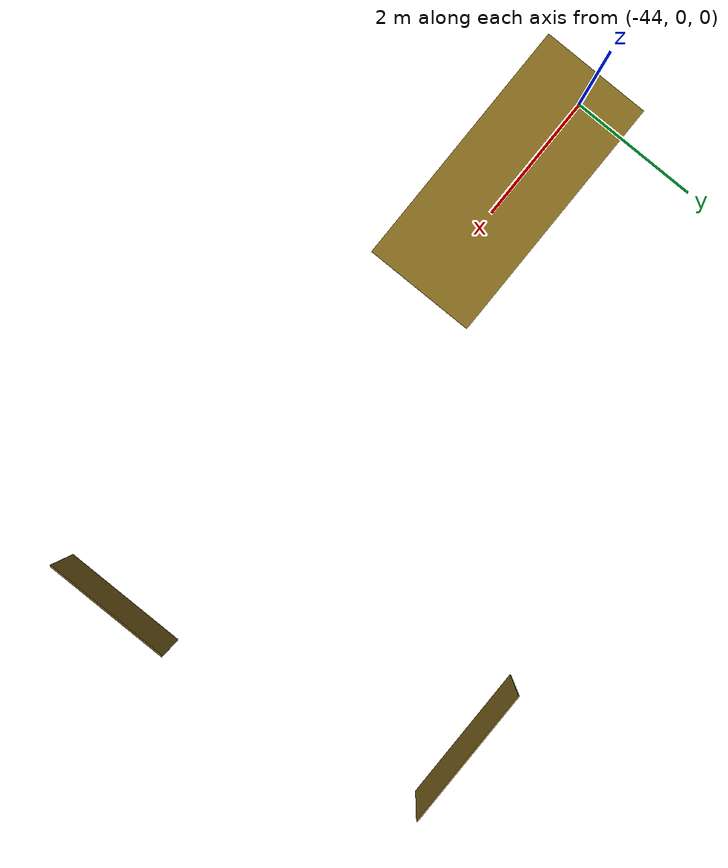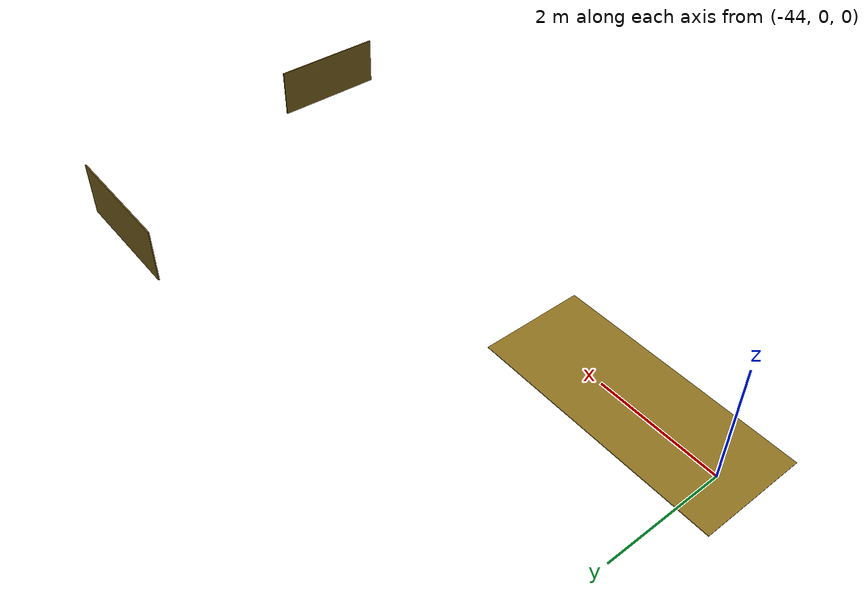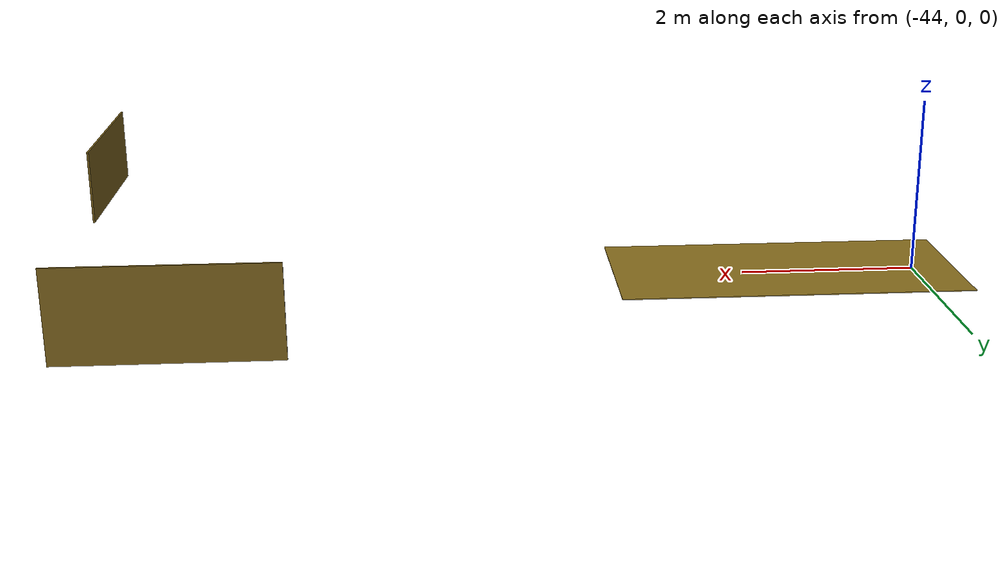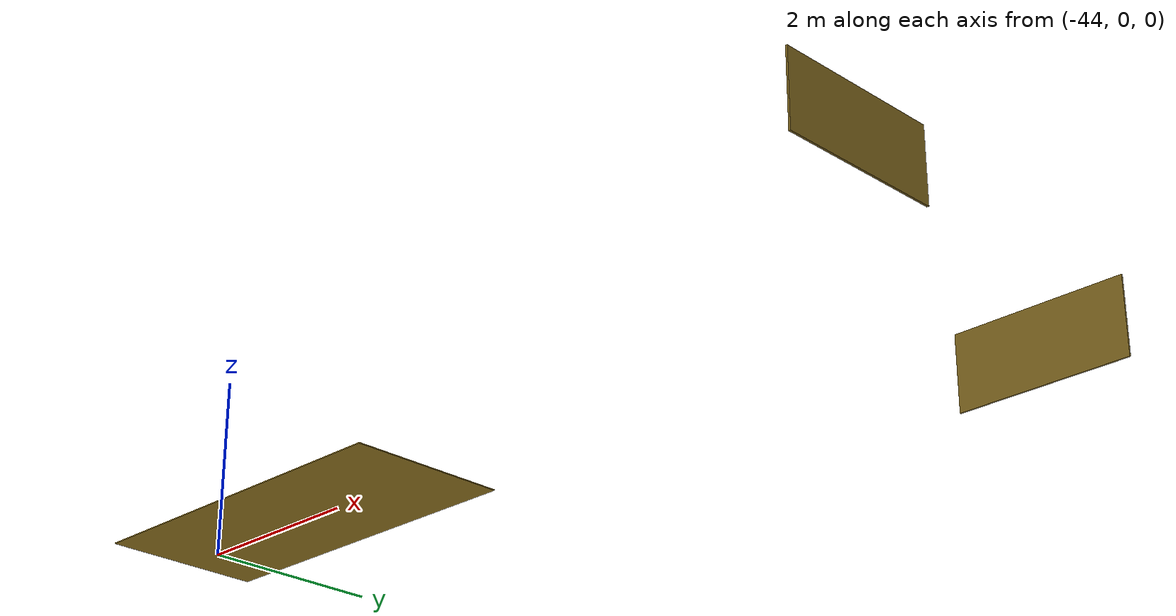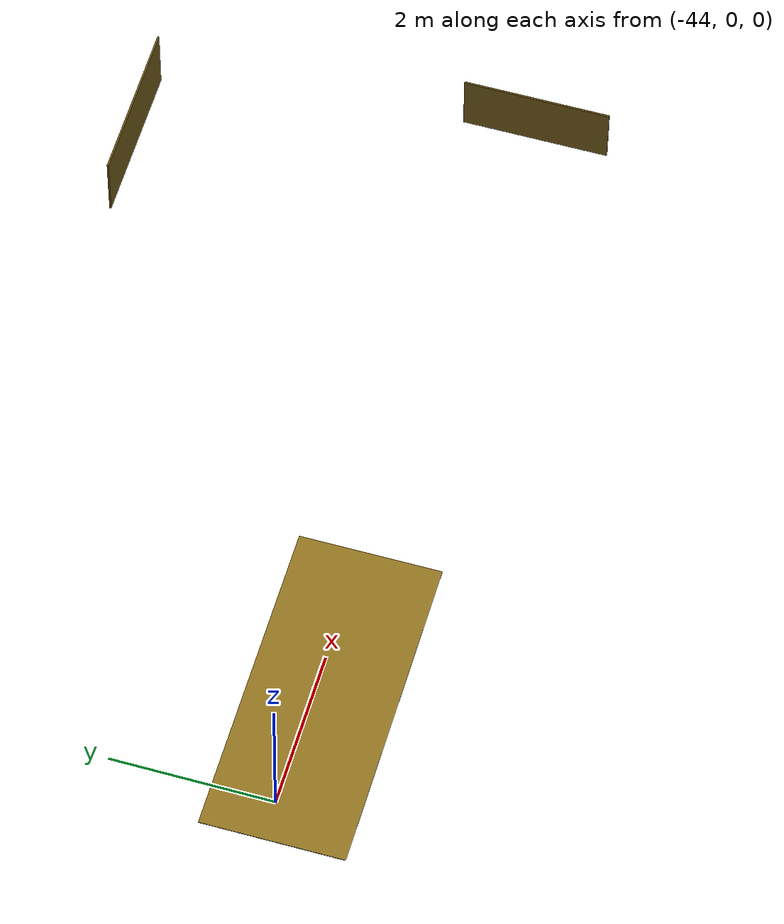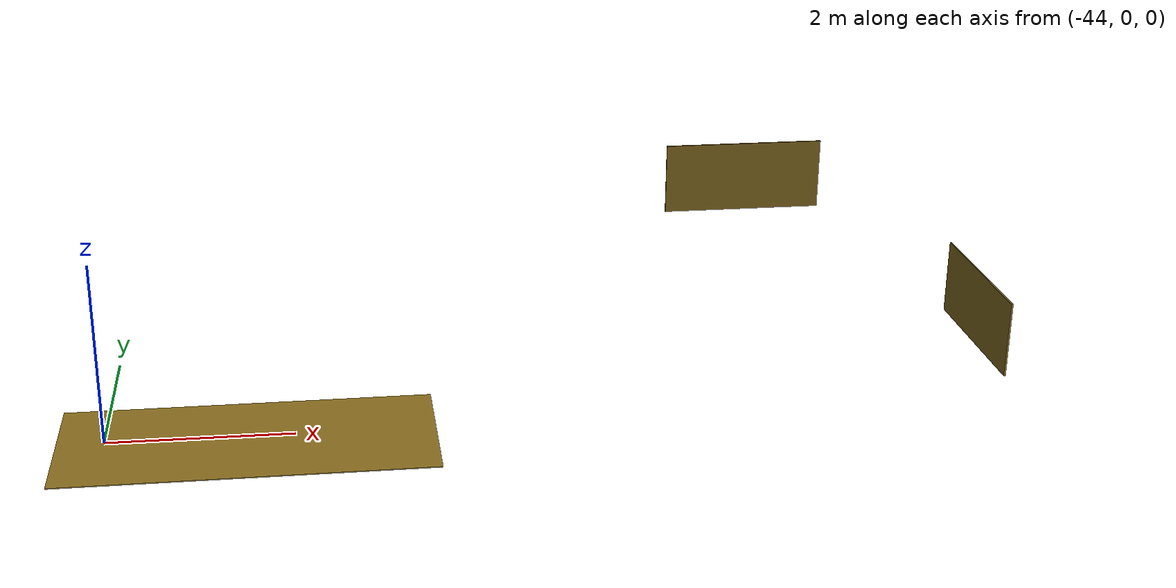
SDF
<?xml version="1.0" encoding="utf-8"?>
<sdf version="1.7">
  <model name="moca_decal">
    <static>true</static>

    <!-- ============ 1) 북벽 (openarm 뒤) ============ -->
    <link name="decal_north">
      <pose>-36.200 4.130 1.300 0 0 0</pose>
      <visual name="decal_north_visual">
        <geometry>
          <box>
            <size>2.000 0.020 0.876</size>
          </box>
        </geometry>
        <material>
          <ambient>0.10 0.08 0.02 1</ambient>
          <diffuse>0.45 0.36 0.10 1</diffuse>
          <specular>1.0 0.90 0.40 1</specular>
          <emissive>1.0 0.84 0.30 1</emissive>
          <pbr>
            <metal>
              <albedo_map>model://moca_decal/materials/textures/mocadesign.png</albedo_map>
              <emissive_map>model://moca_decal/materials/textures/mocadesign.png</emissive_map>
              <metalness>0.85</metalness>
              <roughness>0.18</roughness>
            </metal>
          </pbr>
        </material>
      </visual>
    </link>

    <!-- ============ 2) 동벽 ============ -->
    <link name="decal_east">
      <pose>-34.780 -0.500 1.300 0 0 0</pose>
      <visual name="decal_east_visual">
        <geometry>
          <box>
            <size>0.020 1.800 0.789</size>
          </box>
        </geometry>
        <material>
          <ambient>0.10 0.08 0.02 1</ambient>
          <diffuse>0.45 0.36 0.10 1</diffuse>
          <specular>1.0 0.90 0.40 1</specular>
          <emissive>1.0 0.84 0.30 1</emissive>
          <pbr>
            <metal>
              <albedo_map>model://moca_decal/materials/textures/mocadesign.png</albedo_map>
              <emissive_map>model://moca_decal/materials/textures/mocadesign.png</emissive_map>
              <metalness>0.85</metalness>
              <roughness>0.18</roughness>
            </metal>
          </pbr>
        </material>
      </visual>
    </link>

    <!-- ============ 3) T02~T05 홀 바닥 ============ -->
    <link name="decal_floor">
      <pose>-42.500 -0.100 0.005 0 0 0</pose>
      <visual name="decal_floor_visual">
        <geometry>
          <box>
            <size>4.000 1.750 0.010</size>
          </box>
        </geometry>
        <material>
          <ambient>0.12 0.10 0.03 1</ambient>
          <diffuse>0.55 0.44 0.12 1</diffuse>
          <specular>1.0 0.92 0.45 1</specular>
          <emissive>0.85 0.70 0.25 1</emissive>
          <pbr>
            <metal>
              <albedo_map>model://moca_decal/materials/textures/mocadesign.png</albedo_map>
              <emissive_map>model://moca_decal/materials/textures/mocadesign.png</emissive_map>
              <metalness>0.92</metalness>
              <roughness>0.15</roughness>
            </metal>
          </pbr>
        </material>
      </visual>
    </link>
  </model>
</sdf>
